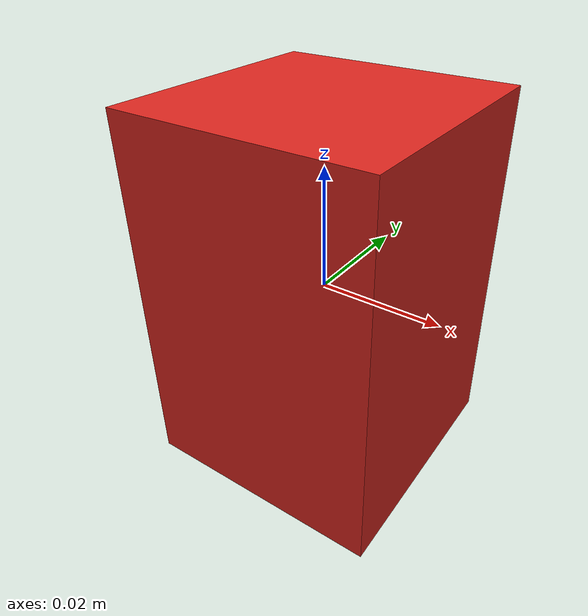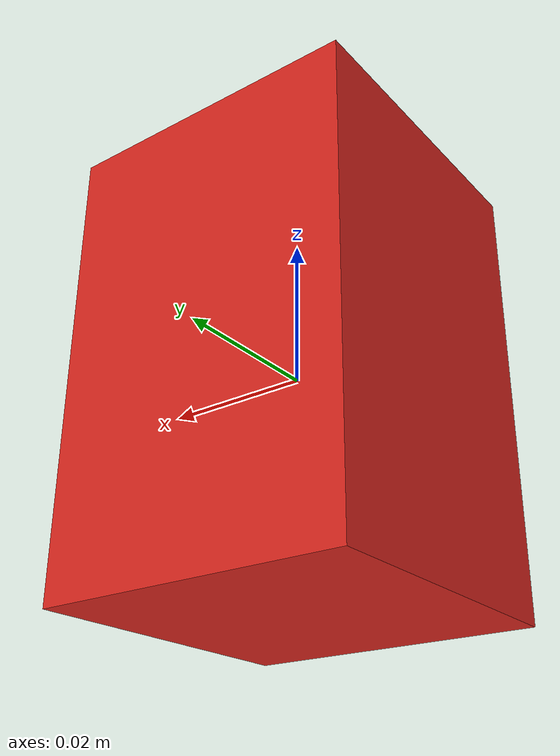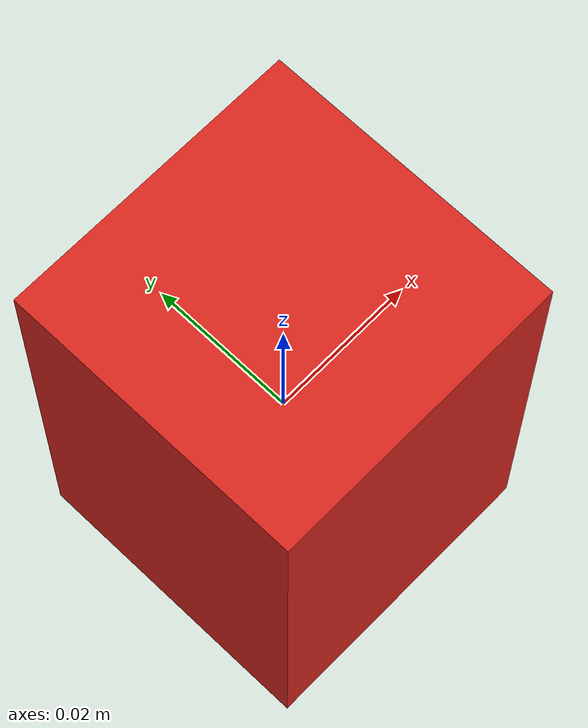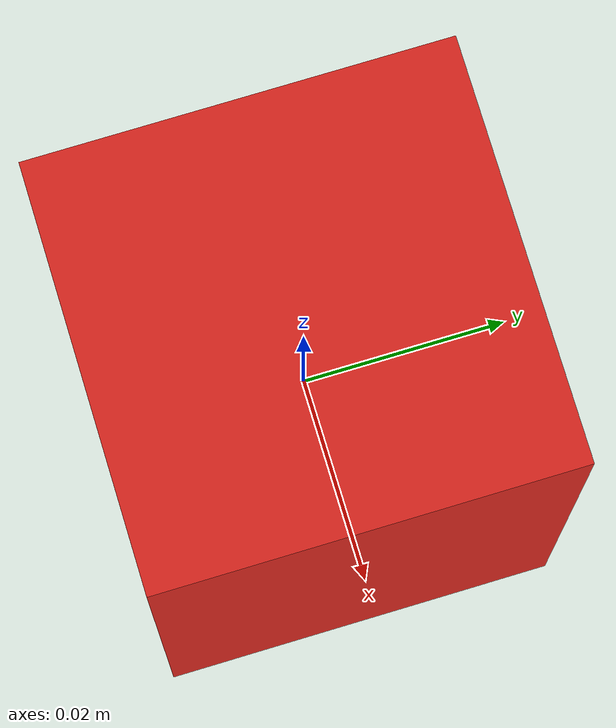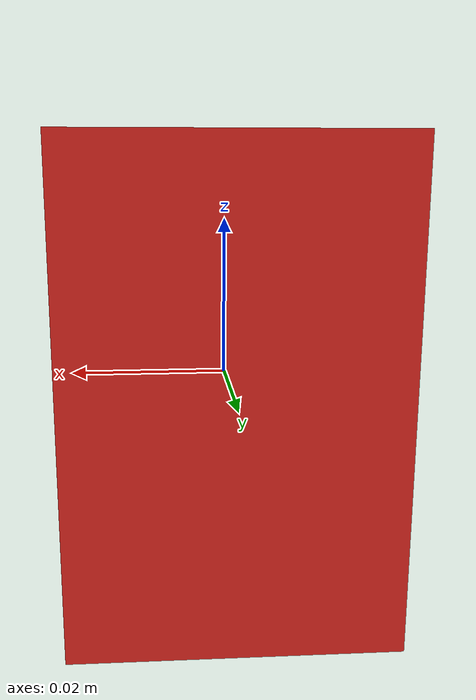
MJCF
<mujoco model="block">
  <compiler angle="radian"/>
  <asset>
    <material name="block_mat" rgba="0.85 0.15 0.12 1" shininess="0.3" specular="0.4"/>
  </asset>
  <worldbody>
    <body>
      <body name="object">
        <geom name="box" type="box" pos="0 0 0" size="0.020 0.020 0.030"
              material="block_mat" group="0" friction="1 0.005 0.0001" condim="4"
              solref="0.02 1" density="600"/>
      </body>
    </body>
  </worldbody>
</mujoco>
